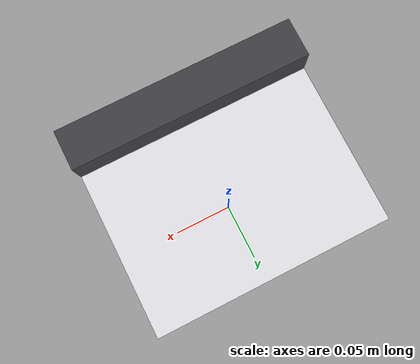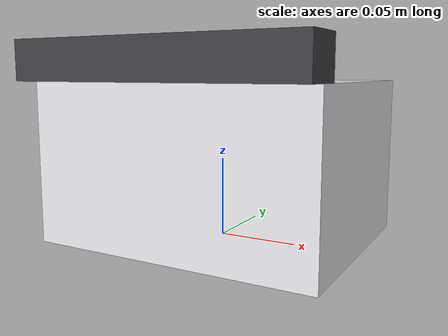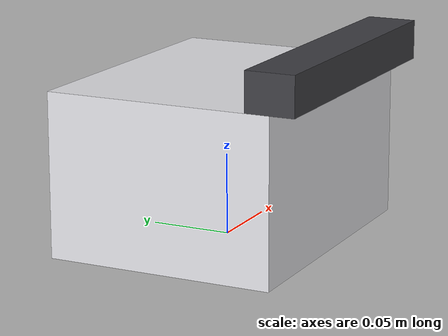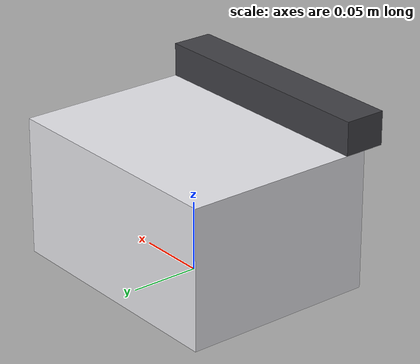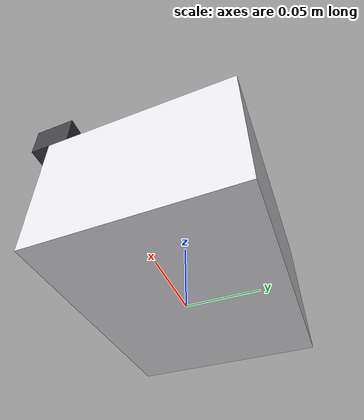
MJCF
<?xml version="1.0" encoding="utf-8"?>
<mujoco model="real_lab_chile_university_pcr">
  <compiler angle="radian" autolimits="true"/>
  <default>
    <default class="body"><geom contype="1" conaffinity="1"/></default>
  </default>
  <worldbody>
    <body name="base">
      <geom type="box" size="0.09 0.07 0.05" pos="0 0 0.05" rgba="0.9 0.9 0.92 1" class="body"/>
      <body name="lid" pos="0 -0.07 0.1">
        <joint name="lid_joint" type="hinge" axis="0 1 0" range="0 1.5" damping="0.6" frictionloss="0.25"/>
  <geom type="box" size="0.09 0.015 0.012" pos="0 0 0.012" rgba="0.25 0.25 0.27 1" class="body"/>
      </body>
    </body>
  </worldbody>
</mujoco>
